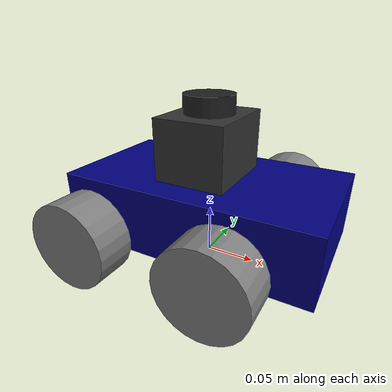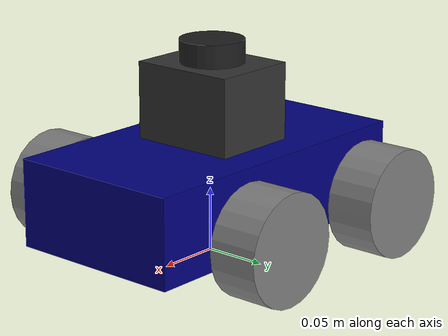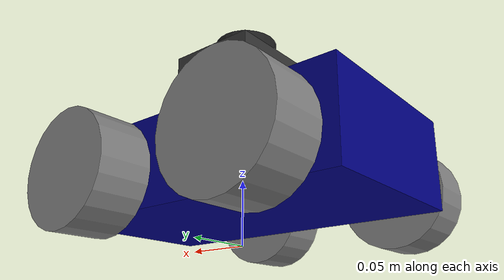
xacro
<?xml version="1.0"?>
<robot name="my_robot" xmlns:xacro="http://www.ros.org/wiki/xacro">

    <xacro:include filename="properties.xacro" />
    <xacro:include filename="base.xacro" />
    <xacro:include filename="base_gz.xacro" />
    <xacro:include filename="ros2_control.xacro" />
    <xacro:include filename="lidar.xacro" />
</robot>

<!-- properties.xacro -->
<robot xmlns:xacro="http://www.ros.org/wiki/xacro">

    <material name="blue">
        <color rgba="0 0 0.5 1" />
    </material>

    <material name="grey">
        <color rgba="0.5 0.5 0.5 1" />
    </material>

    <material name="red">
        <color rgba="1 0 0 1" />
    </material>

    <material name="gellow">
        <color rgba="0 0.8 0.5 1" />
    </material>

    <xacro:macro name="box_inertia" params="m l w h xyz rpy">
        <inertial>
            <origin xyz="${xyz}" rpy="${rpy}" />
            <mass value="${m}" />
            <inertia ixx="${(m/12) * (w*w + h*h)}" ixy="0" ixz="0"
                     iyy="${(m/12) * (l*l + h*h)}" iyz="0"
                     izz="${(m/12) * (l*l + w*w)}" />
        </inertial>
    </xacro:macro>

    <xacro:macro name="cylinder_inertia" params="m r h xyz rpy">
        <inertial>
            <origin xyz="${xyz}" rpy="${rpy}" />
            <mass value="${m}" />
            <inertia ixx="${(m/12) * (3*r*r + h*h)}" ixy="0" ixz="0"
                     iyy="${(m/12) * (3*r*r + h*h)}" iyz="0"
                     izz="${(m/2) * (r*r)}" />
        </inertial>
    </xacro:macro>

</robot>

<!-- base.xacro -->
<robot xmlns:xacro="http://www.ros.org/wiki/xacro">

    <xacro:property name="base_length" value="0.255" />
    <xacro:property name="base_width" value="0.14" />
    <xacro:property name="base_height" value="0.068" />
    <xacro:property name="wheel_radius" value="0.0425" />
    <xacro:property name="wheel_length" value="0.039" />

    <link name="base_footprint" />

    <link name="base_link">
        <visual>
            <geometry>
                <box size="${base_length} ${base_width} ${base_height}" />
            </geometry>
            <origin xyz="0 0 0" rpy="0 0 0" />
            <material name="blue" />
        </visual>
        <collision>
            <geometry>
                <box size="${base_length} ${base_width} ${base_height}" />
            </geometry>
            <origin xyz="0 0 0" rpy="0 0 0" />
        </collision>
        <xacro:box_inertia m="5.0" l="${2*base_length}" w="${2*base_width}" h="${2*base_height}"
                           xyz="0 0 ${base_height / 2.0}" rpy="0 0 0" />
    </link>

    <xacro:macro name="wheel_link" params="prefix">
        <link name="${prefix}_wheel_link">
            <visual>
                <geometry>
                    <cylinder radius="${wheel_radius}" length="${wheel_length}" />
                </geometry>
                <origin xyz="0 0 0" rpy="${pi / 2.0} 0 0" />
                <material name="grey" />
            </visual>
            <collision>
                <geometry>
                    <cylinder radius="${wheel_radius}" length="${wheel_length}" />
                </geometry>
                <origin xyz="0 0 0" rpy="${pi / 2.0} 0 0" />
            </collision>
            <xacro:cylinder_inertia m="1.0" r="${2*wheel_radius}" h="${2*wheel_length}"
                                    xyz="0 0 0" rpy="${pi / 2.0} 0 0" />
        </link>
    </xacro:macro>

    <xacro:wheel_link prefix="rf" />
    <xacro:wheel_link prefix="lf" />
    <xacro:wheel_link prefix="rb" />
    <xacro:wheel_link prefix="lb" />

    <joint name="base_joint" type="fixed">
        <parent link="base_footprint" />
        <child link="base_link" />
        <origin xyz="0 0 0.055" rpy="0 0 0"/>
    </joint>

    <joint name="right_wheel_joint" type="continuous">
        <parent link="base_link" />
        <child link="rb_wheel_link" />
        <origin xyz="-0.0825 -0.1025 -0.0125" rpy="0 0 0" />
        <axis xyz="0 1 0" />
    </joint>

    <joint name="left_wheel_joint" type="continuous">
        <parent link="base_link" />
        <child link="lb_wheel_link" />
        <origin xyz="-0.0825 0.1025 -0.0125" rpy="0 0 0" />
        <axis xyz="0 1 0" />
    </joint>

    <joint name="base_rf_wheel_joint" type="continuous">
        <parent link="base_link" />
        <child link="rf_wheel_link" />
        <origin xyz="0.0525 -0.1025 -0.0125" rpy="0 0 0" />
        <axis xyz="0 1 0" />
        <mimic joint="right_wheel_joint" multiplier="1.0" offset="0.0"/>
    </joint>

    <joint name="base_lf_wheel_joint" type="continuous">
        <parent link="base_link" />
        <child link="lf_wheel_link" />
        <origin xyz="0.0525 0.1025 -0.0125" rpy="0 0 0" />
        <axis xyz="0 1 0" />
        <mimic joint="left_wheel_joint" multiplier="1.0" offset="0.0"/>
    </joint>
</robot>

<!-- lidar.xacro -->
<robot xmlns:xacro="http://www.ros.org/wiki/xacro" >

    <link name="lidar_tower_link">
        <visual>
            <geometry>
                <box size="0.07 0.085 0.06" /> </geometry>
            <material name="dark_grey">
                <color rgba="0.2 0.2 0.2 1.0"/>
            </material>
        </visual>
        <collision>
            <geometry>
                <box size="0.07 0.085 0.06" />
            </geometry>
        </collision>
    </link>

    <joint name="tower_joint" type="fixed">
        <parent link="base_link" />
        <child link="lidar_tower_link" />
        <origin xyz="-0.0025 0.0 0.064" rpy="0 0 0" />
    </joint>

    <joint name="laser_joint" type="fixed">
        <parent link="lidar_tower_link"/>
        <child link="laser_frame"/>
        <origin xyz="0 0 0.039" rpy="0 0 0"/>
    </joint>

    <link name="laser_frame">
        <visual>
            <geometry>
                <cylinder radius="0.025" length="0.018"/>
            </geometry>
            <material name="black"/>
        </visual>
        <visual>
            <origin xyz="0 0 -0.05"/>
            <geometry>
                <cylinder radius="0.025" length="0.018"/>
            </geometry>
            <material name="black"/>
        </visual>
        <collision>
            <geometry>
                <cylinder radius="0.025" length="0.018"/>
            </geometry>
        </collision>
        <xacro:cylinder_inertia m="0.1" r="0.018" h="0.025" xyz="0 0 0" rpy="0 0 0" >
        </xacro:cylinder_inertia>
    </link>

</robot>
